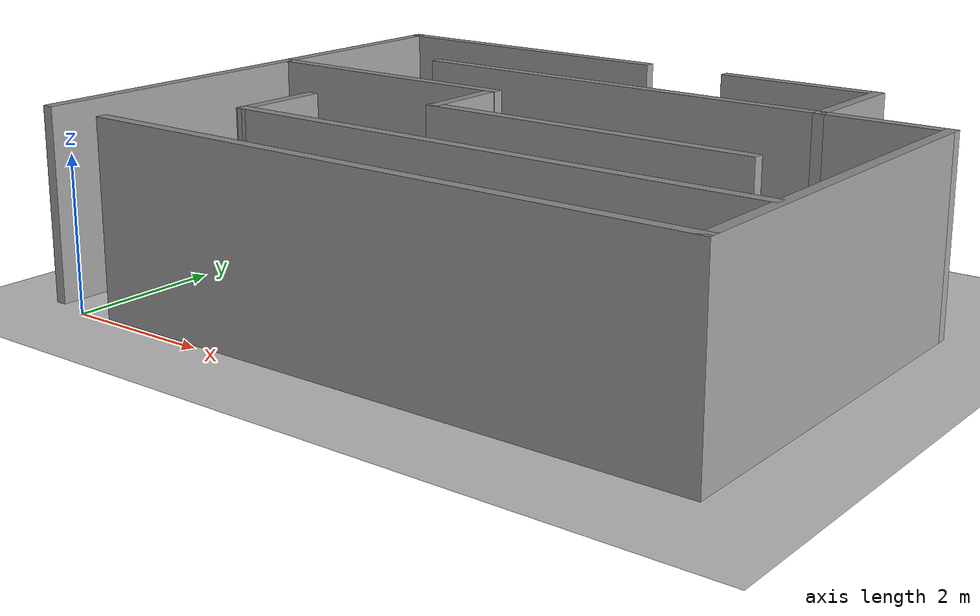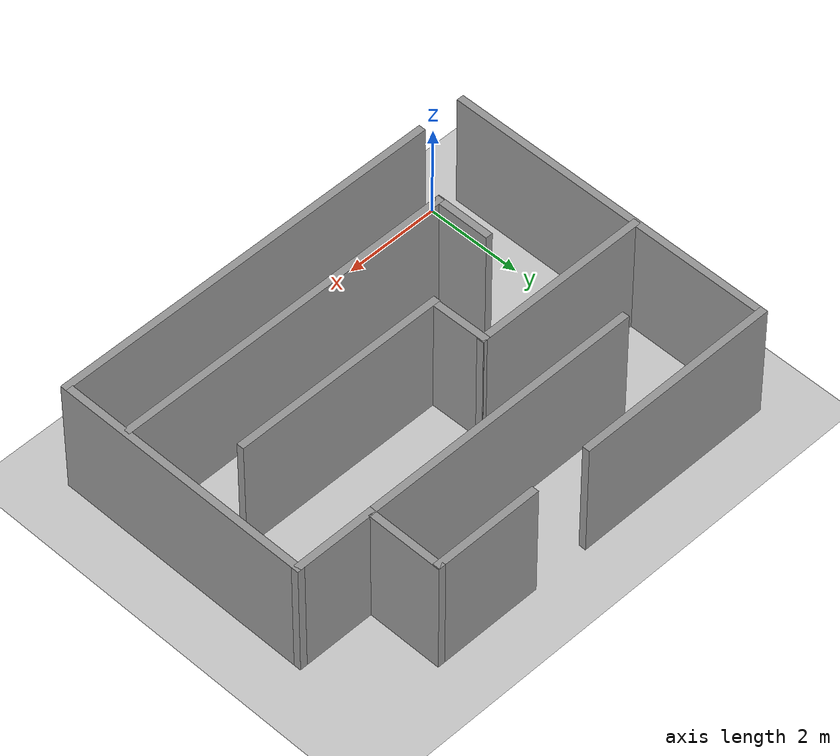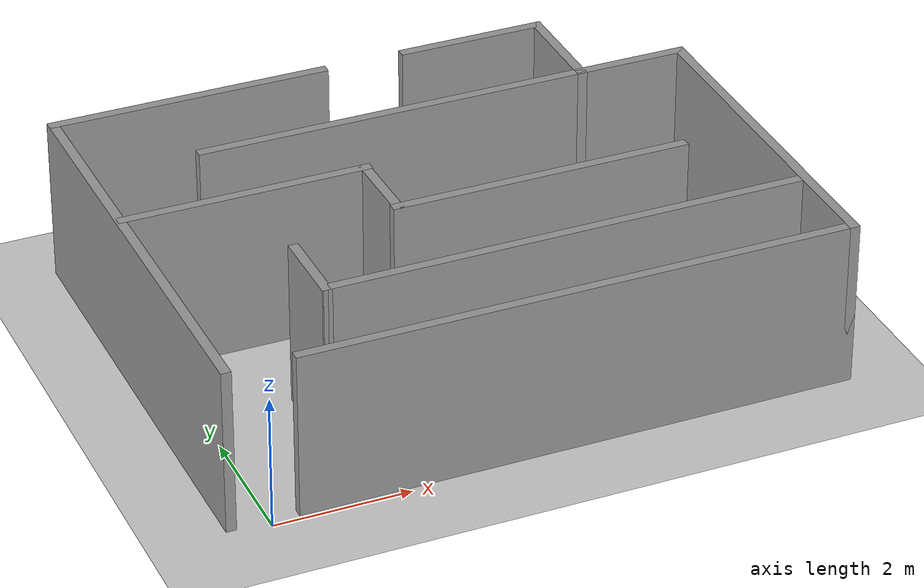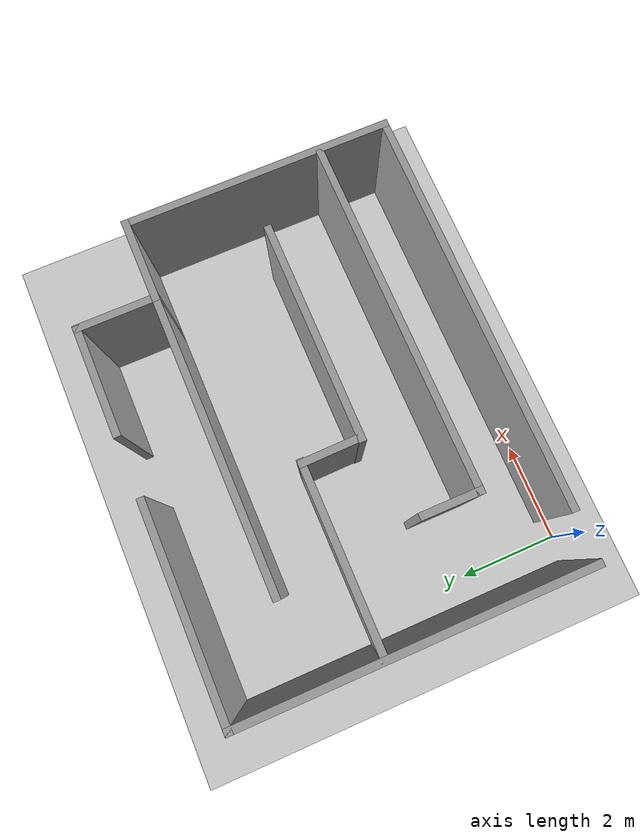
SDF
<sdf version="1.7">
 <world name="default">
  <light name="sun" type="directional">
   <pose>0 0 10 0 -0 0</pose>
   <diffuse>0.8 0.8 0.8 1</diffuse>
   <specular>0.2 0.2 0.2 1</specular>
   <attenuation>
    <range>1000</range>
    <constant>0.9</constant>
    <linear>0.01</linear>
    <quadratic>0.001</quadratic>
   </attenuation>
   <direction>-0.5 0.1 -0.9</direction>
   <spot><inner_angle>0</inner_angle><outer_angle>0</outer_angle><falloff>0</falloff></spot>
  </light>
  <model name="ground_plane">
   <static>1</static>
   <link name="link">
    <collision name="collision">
     <geometry><plane><normal>0 0 1</normal><size>100 100</size></plane></geometry>
     <surface>
      <contact><collide_bitmask>65535</collide_bitmask></contact>
      <friction><ode><mu>100</mu><mu2>50</mu2></ode></friction>
     </surface>
    </collision>
    <visual name="visual">
     <cast_shadows>0</cast_shadows>
     <geometry><plane><normal>0 0 1</normal><size>100 100</size></plane></geometry>
     <material>
      <script><uri>file://media/materials/scripts/gazebo.material</uri><name>Gazebo/Grey</name></script>
     </material>
    </visual>
   </link>
  </model>
  <gravity>0 0 -9.8</gravity>
  <magnetic_field>6e-06 2.3e-05 -4.2e-05</magnetic_field>
  <atmosphere type="adiabatic"/>
  <physics type="ode">
   <max_step_size>0.001</max_step_size>
   <real_time_factor>1</real_time_factor>
   <real_time_update_rate>1000</real_time_update_rate>
  </physics>
  <scene><ambient>0.4 0.4 0.4 1</ambient><background>0.7 0.7 0.7 1</background><shadows>1</shadows></scene>
  <spherical_coordinates>
   <surface_model>EARTH_WGS84</surface_model>
   <latitude_deg>0</latitude_deg>
   <longitude_deg>0</longitude_deg>
   <elevation>0</elevation>
   <heading_deg>0</heading_deg>
  </spherical_coordinates>
  <model name="maze">
   <pose>4.01868 3.58658 0 0 -0 0</pose>
   <link name="Wall_1">
    <collision name="Wall_1_Collision">
     <geometry><box><size>8.25 0.15 2.5</size></box></geometry>
     <pose>0 0 1.25 0 -0 0</pose>
    </collision>
    <visual name="Wall_1_Visual">
     <pose>0 0 1.25 0 -0 0</pose>
     <geometry><box><size>8.25 0.15 2.5</size></box></geometry>
     <material>
      <script><uri>file://media/materials/scripts/gazebo.material</uri><name>Gazebo/Grey</name></script>
      <ambient>1 1 1 1</ambient>
     </material>
     <meta><layer>0</layer></meta>
    </visual>
    <pose>0.515408 -3.4419 0 0 -0 0</pose>
   </link>
   <link name="Wall_2">
    <collision name="Wall_2_Collision">
     <geometry><box><size>5.5 0.15 2.5</size></box></geometry>
     <pose>0 0 1.25 0 -0 0</pose>
    </collision>
    <visual name="Wall_2_Visual">
     <pose>0 0 1.25 0 -0 0</pose>
     <geometry><box><size>5.5 0.15 2.5</size></box></geometry>
     <material>
      <script><uri>file://media/materials/scripts/gazebo.material</uri><name>Gazebo/Grey</name></script>
      <ambient>1 1 1 1</ambient>
     </material>
     <meta><layer>0</layer></meta>
    </visual>
    <pose>4.56541 -0.766899 0 0 -0 1.5708</pose>
   </link>
   <link name="Wall_3">
    <collision name="Wall_3_Collision">
     <geometry><box><size>1.75 0.15 2.5</size></box></geometry>
     <pose>0 0 1.25 0 -0 0</pose>
    </collision>
    <visual name="Wall_3_Visual">
     <pose>0 0 1.25 0 -0 0</pose>
     <geometry><box><size>1.75 0.15 2.5</size></box></geometry>
     <material>
      <script><uri>file://media/materials/scripts/gazebo.material</uri><name>Gazebo/Grey</name></script>
      <ambient>1 1 1 1</ambient>
     </material>
     <meta><layer>0</layer></meta>
    </visual>
    <pose>3.76541 1.9081 0 0 -0 3.14159</pose>
   </link>
   <link name="Wall_4">
    <collision name="Wall_4_Collision">
     <geometry><box><size>1.6825 0.15 2.5</size></box></geometry>
     <pose>0 0 1.25 0 -0 0</pose>
    </collision>
    <visual name="Wall_4_Visual">
     <pose>0 0 1.25 0 -0 0</pose>
     <geometry><box><size>1.6825 0.15 2.5</size></box></geometry>
     <material>
      <script><uri>file://media/materials/scripts/gazebo.material</uri><name>Gazebo/Grey</name></script>
      <ambient>1 1 1 1</ambient>
     </material>
     <meta><layer>0</layer></meta>
    </visual>
    <pose>2.96541 2.6743 0 0 -0 1.5708</pose>
   </link>
   <link name="Wall_5">
    <collision name="Wall_5_Collision">
     <geometry><box><size>2.25 0.15 2.5</size></box></geometry>
     <pose>0 0 1.25 0 -0 0</pose>
    </collision>
    <visual name="Wall_5_Visual">
     <pose>0 0 1.25 0 -0 0</pose>
     <geometry><box><size>2.25 0.15 2.5</size></box></geometry>
     <material>
      <script><uri>file://media/materials/scripts/gazebo.material</uri><name>Gazebo/Grey</name></script>
      <ambient>1 1 1 1</ambient>
     </material>
     <meta><layer>0</layer></meta>
    </visual>
    <pose>1.89851 3.44051 0 0 -0 3.14159</pose>
   </link>
   <link name="Wall_6">
    <collision name="Wall_6_Collision">
     <geometry><box><size>7 0.15 2.5</size></box></geometry>
     <pose>0 0 1.25 0 -0 0</pose>
    </collision>
    <visual name="Wall_6_Visual">
     <pose>0 0 1.25 0 -0 0</pose>
     <geometry><box><size>7 0.15 2.5</size></box></geometry>
     <material>
      <script><uri>file://media/materials/scripts/gazebo.material</uri><name>Gazebo/Grey</name></script>
      <ambient>1 1 1 1</ambient>
     </material>
     <meta><layer>0</layer></meta>
    </visual>
    <pose>-4.56541 0.016899 0 0 -0 1.5708</pose>
   </link>
   <link name="Wall_7">
    <collision name="Wall_7_Collision">
     <geometry><box><size>4.25 0.15 2.5</size></box></geometry>
     <pose>0 0 1.25 0 -0 0</pose>
    </collision>
    <visual name="Wall_7_Visual">
     <pose>0 0 1.25 0 -0 0</pose>
     <geometry><box><size>4.25 0.15 2.5</size></box></geometry>
     <material>
      <script><uri>file://media/materials/scripts/gazebo.material</uri><name>Gazebo/Grey</name></script>
      <ambient>1 1 1 1</ambient>
     </material>
     <meta><layer>0</layer></meta>
    </visual>
    <pose>-2.51541 3.4419 0 0 -0 0</pose>
   </link>
   <link name="Wall_8">
    <collision name="Wall_8_Collision">
     <geometry><box><size>6 0.15 2.5</size></box></geometry>
     <pose>0 0 1.25 0 -0 0</pose>
    </collision>
    <visual name="Wall_8_Visual">
     <pose>0 0 1.25 0 -0 0</pose>
     <geometry><box><size>6 0.15 2.5</size></box></geometry>
     <material>
      <script><uri>file://media/materials/scripts/gazebo.material</uri><name>Gazebo/Grey</name></script>
      <ambient>1 1 1 1</ambient>
     </material>
     <meta><layer>0</layer></meta>
    </visual>
    <pose>0.040408 1.9081 0 0 -0 3.14159</pose>
   </link>
   <link name="Wall_9">
    <collision name="Wall_9_Collision">
     <geometry><box><size>3.75 0.15 2.5</size></box></geometry>
     <pose>0 0 1.25 0 -0 0</pose>
    </collision>
    <visual name="Wall_9_Visual">
     <pose>0 0 1.25 0 -0 0</pose>
     <geometry><box><size>3.75 0.15 2.5</size></box></geometry>
     <material>
      <script><uri>file://media/materials/scripts/gazebo.material</uri><name>Gazebo/Grey</name></script>
      <ambient>1 1 1 1</ambient>
     </material>
     <meta><layer>0</layer></meta>
    </visual>
    <pose>-2.73161 0.613768 0 0 -0 0</pose>
   </link>
   <link name="Wall_10">
    <collision name="Wall_10_Collision">
     <geometry><box><size>1.28044 0.15 2.5</size></box></geometry>
     <pose>0 0 1.25 0 -0 0</pose>
    </collision>
    <visual name="Wall_10_Visual">
     <pose>0 0 1.25 0 -0 0</pose>
     <geometry><box><size>1.28044 0.15 2.5</size></box></geometry>
     <material>
      <script><uri>file://media/materials/scripts/gazebo.material</uri><name>Gazebo/Grey</name></script>
      <ambient>1 1 1 1</ambient>
     </material>
     <meta><layer>0</layer></meta>
    </visual>
    <pose>-0.94006 0.048609 0 0 -0 -1.55585</pose>
   </link>
   <link name="Wall_11">
    <collision name="Wall_11_Collision">
     <geometry><box><size>4.5 0.15 2.5</size></box></geometry>
     <pose>0 0 1.25 0 -0 0</pose>
    </collision>
    <visual name="Wall_11_Visual">
     <pose>0 0 1.25 0 -0 0</pose>
     <geometry><box><size>4.5 0.15 2.5</size></box></geometry>
     <material>
      <script><uri>file://media/materials/scripts/gazebo.material</uri><name>Gazebo/Grey</name></script>
      <ambient>1 1 1 1</ambient>
     </material>
     <meta><layer>0</layer></meta>
    </visual>
    <pose>1.22649 -0.533449 0 0 -0 0</pose>
   </link>
   <link name="Wall_12">
    <collision name="Wall_12_Collision">
     <geometry><box><size>7.23312 0.15 2.5</size></box></geometry>
     <pose>0 0 1.25 0 -0 0</pose>
    </collision>
    <visual name="Wall_12_Visual">
     <pose>0 0 1.25 0 -0 0</pose>
     <geometry><box><size>7.23312 0.15 2.5</size></box></geometry>
     <material>
      <script><uri>file://media/materials/scripts/gazebo.material</uri><name>Gazebo/Grey</name></script>
      <ambient>1 1 1 1</ambient>
     </material>
     <meta><layer>0</layer></meta>
    </visual>
    <pose>0.933799 -2.06466 0 0 -0 -3.13921</pose>
   </link>
   <link name="Wall_13">
    <collision name="Wall_13_Collision">
     <geometry><box><size>1.25 0.15 2.5</size></box></geometry>
     <pose>0 0 1.25 0 -0 0</pose>
    </collision>
    <visual name="Wall_13_Visual">
     <pose>0 0 1.25 0 -0 0</pose>
     <geometry><box><size>1.25 0.15 2.5</size></box></geometry>
     <material>
      <script><uri>file://media/materials/scripts/gazebo.material</uri><name>Gazebo/Grey</name></script>
      <ambient>1 1 1 1</ambient>
     </material>
     <meta><layer>0</layer></meta>
    </visual>
    <pose>-2.62465 -1.52311 0 0 -0 1.5708</pose>
   </link>
   <static>1</static>
  </model>
 </world>
</sdf>
